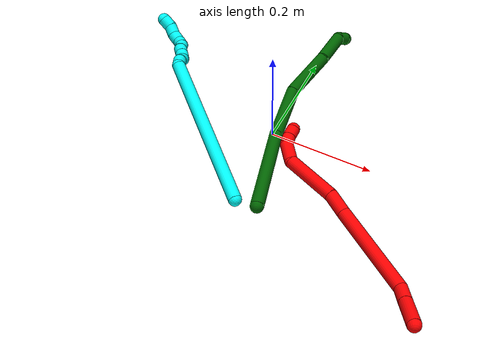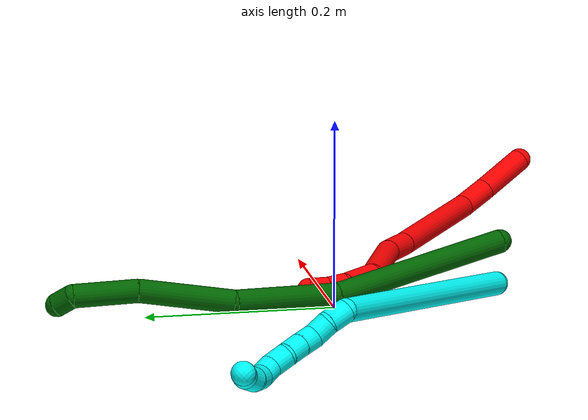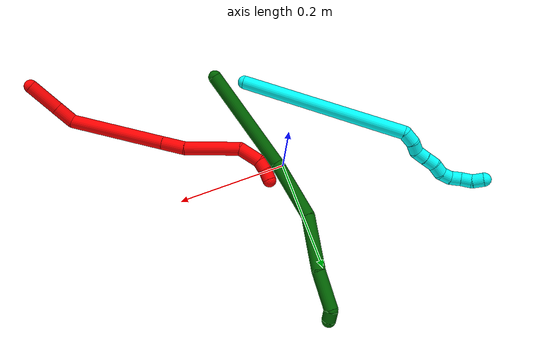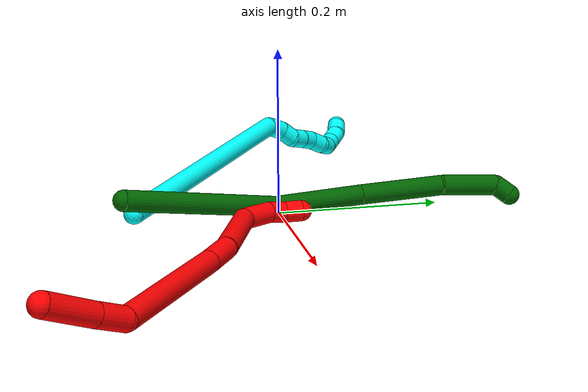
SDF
<sdf version="1.7">
 <world name="default">
  <model name="2">
   <static>0</static>
   <link name="2">
    <collision name="collision-cylinder-e_1_1_4">
     <pose>-0.006052 -0.006057 -0.028628 2.93309 -0.203959 -1.5486</pose>
     <geometry><cylinder><radius>0.0125</radius><length>0.059763</length></cylinder></geometry>
     <surface>
      <friction><ode><mu>1.16</mu><mu2>1.16</mu2><slip1>0</slip1><slip2>0</slip2></ode></friction>
      <contact><ode><kp>1e+06</kp><kd>1</kd><max_vel>0</max_vel><min_depth>0.001</min_depth></ode></contact>
     </surface>
    </collision>
    <visual name="visual-cylinder-e_1_1_4">
     <pose>-0.006052 -0.006057 -0.028628 2.93309 -0.203959 -1.5486</pose>
     <geometry><cylinder><radius>0.0125</radius><length>0.059763</length></cylinder></geometry>
     <material><ambient>1 0 0 1</ambient></material>
    </visual>
    <collision name="collision-cylinder-e_2_4_5">
     <pose>-0.015595 -0.01518 -0.074829 2.9689 -0.193214 -1.6835</pose>
     <geometry><cylinder><radius>0.0125</radius><length>0.036353</length></cylinder></geometry>
     <surface>
      <friction><ode><mu>1.16</mu><mu2>1.16</mu2><slip1>0</slip1><slip2>0</slip2></ode></friction>
      <contact><ode><kp>1e+06</kp><kd>1</kd><max_vel>0</max_vel><min_depth>0.001</min_depth></ode></contact>
     </surface>
    </collision>
    <visual name="visual-cylinder-e_2_4_5">
     <pose>-0.015595 -0.01518 -0.074829 2.9689 -0.193214 -1.6835</pose>
     <geometry><cylinder><radius>0.0125</radius><length>0.036353</length></cylinder></geometry>
     <material><ambient>1 0 0 1</ambient></material>
    </visual>
    <collision name="collision-cylinder-e_3_5_6">
     <pose>-0.057351 0.008394 -0.166332 -2.79575 -0.453158 1.84485</pose>
     <geometry><cylinder><radius>0.0125</radius><length>0.174808</length></cylinder></geometry>
     <surface>
      <friction><ode><mu>1.16</mu><mu2>1.16</mu2><slip1>0</slip1><slip2>0</slip2></ode></friction>
      <contact><ode><kp>1e+06</kp><kd>1</kd><max_vel>0</max_vel><min_depth>0.001</min_depth></ode></contact>
     </surface>
    </collision>
    <visual name="visual-cylinder-e_3_5_6">
     <pose>-0.057351 0.008394 -0.166332 -2.79575 -0.453158 1.84485</pose>
     <geometry><cylinder><radius>0.0125</radius><length>0.174808</length></cylinder></geometry>
     <material><ambient>1 0 0 1</ambient></material>
    </visual>
    <collision name="collision-cylinder-e_4_6_7">
     <pose>-0.104454 0.042635 -0.258341 -2.74353 -0.423297 1.63399</pose>
     <geometry><cylinder><radius>0.0125</radius><length>0.043024</length></cylinder></geometry>
     <surface>
      <friction><ode><mu>1.16</mu><mu2>1.16</mu2><slip1>0</slip1><slip2>0</slip2></ode></friction>
      <contact><ode><kp>1e+06</kp><kd>1</kd><max_vel>0</max_vel><min_depth>0.001</min_depth></ode></contact>
     </surface>
    </collision>
    <visual name="visual-cylinder-e_4_6_7">
     <pose>-0.104454 0.042635 -0.258341 -2.74353 -0.423297 1.63399</pose>
     <geometry><cylinder><radius>0.0125</radius><length>0.043024</length></cylinder></geometry>
     <material><ambient>1 0 0 1</ambient></material>
    </visual>
    <collision name="collision-cylinder-e_5_7_8">
     <pose>-0.144526 0.068977 -0.312462 -2.66212 -0.655521 1.89501</pose>
     <geometry><cylinder><radius>0.0125</radius><length>0.102484</length></cylinder></geometry>
     <surface>
      <friction><ode><mu>1.16</mu><mu2>1.16</mu2><slip1>0</slip1><slip2>0</slip2></ode></friction>
      <contact><ode><kp>1e+06</kp><kd>1</kd><max_vel>0</max_vel><min_depth>0.001</min_depth></ode></contact>
     </surface>
    </collision>
    <visual name="visual-cylinder-e_5_7_8">
     <pose>-0.144526 0.068977 -0.312462 -2.66212 -0.655521 1.89501</pose>
     <geometry><cylinder><radius>0.0125</radius><length>0.102484</length></cylinder></geometry>
     <material><ambient>1 0 0 1</ambient></material>
    </visual>
    <collision name="collision-cylinder-e_6_8_9">
     <pose>-0.179109 0.091489 -0.369082 -2.96024 -0.158654 1.43683</pose>
     <geometry><cylinder><radius>0.0125</radius><length>0.042378</length></cylinder></geometry>
     <surface>
      <friction><ode><mu>1.16</mu><mu2>1.16</mu2><slip1>0</slip1><slip2>0</slip2></ode></friction>
      <contact><ode><kp>1e+06</kp><kd>1</kd><max_vel>0</max_vel><min_depth>0.001</min_depth></ode></contact>
     </surface>
    </collision>
    <visual name="visual-cylinder-e_6_8_9">
     <pose>-0.179109 0.091489 -0.369082 -2.96024 -0.158654 1.43683</pose>
     <geometry><cylinder><radius>0.0125</radius><length>0.042378</length></cylinder></geometry>
     <material><ambient>1 0 0 1</ambient></material>
    </visual>
    <collision name="collision-cylinder-e_7_9_10">
     <pose>-0.180292 0.094973 -0.399547 3.11229 0.215528 2.87233</pose>
     <geometry><cylinder><radius>0.0125</radius><length>0.020247</length></cylinder></geometry>
     <surface>
      <friction><ode><mu>1.16</mu><mu2>1.16</mu2><slip1>0</slip1><slip2>0</slip2></ode></friction>
      <contact><ode><kp>1e+06</kp><kd>1</kd><max_vel>0</max_vel><min_depth>0.001</min_depth></ode></contact>
     </surface>
    </collision>
    <visual name="visual-cylinder-e_7_9_10">
     <pose>-0.180292 0.094973 -0.399547 3.11229 0.215528 2.87233</pose>
     <geometry><cylinder><radius>0.0125</radius><length>0.020247</length></cylinder></geometry>
     <material><ambient>1 0 0 1</ambient></material>
    </visual>
    <collision name="collision-cylinder-e_8_10_2">
     <pose>-0.173798 0.094655 -0.418967 3.13862 0.426191 3.12784</pose>
     <geometry><cylinder><radius>0.0125</radius><length>0.020942</length></cylinder></geometry>
     <surface>
      <friction><ode><mu>1.16</mu><mu2>1.16</mu2><slip1>0</slip1><slip2>0</slip2></ode></friction>
      <contact><ode><kp>1e+06</kp><kd>1</kd><max_vel>0</max_vel><min_depth>0.001</min_depth></ode></contact>
     </surface>
    </collision>
    <visual name="visual-cylinder-e_8_10_2">
     <pose>-0.173798 0.094655 -0.418967 3.13862 0.426191 3.12784</pose>
     <geometry><cylinder><radius>0.0125</radius><length>0.020942</length></cylinder></geometry>
     <material><ambient>1 0 0 1</ambient></material>
    </visual>
    <collision name="collision-sphere-2">
     <pose>-0.169469 0.094627 -0.428501 0 -0 0</pose>
     <geometry><sphere><radius>0.0125</radius></sphere></geometry>
     <surface>
      <friction><ode><mu>1.16</mu><mu2>1.16</mu2><slip1>0</slip1><slip2>0</slip2></ode></friction>
      <contact><ode><kp>1e+06</kp><kd>1</kd><max_vel>0</max_vel><min_depth>0.001</min_depth></ode></contact>
     </surface>
    </collision>
    <visual name="visual-sphere-2">
     <pose>-0.169469 0.094627 -0.428501 0 -0 0</pose>
     <geometry><sphere><radius>0.0125</radius></sphere></geometry>
     <material><ambient>1 0 0 1</ambient></material>
    </visual>
    <collision name="collision-sphere-10">
     <pose>-0.178127 0.094684 -0.409432 0 -0 0</pose>
     <geometry><sphere><radius>0.0125</radius></sphere></geometry>
     <surface>
      <friction><ode><mu>1.16</mu><mu2>1.16</mu2><slip1>0</slip1><slip2>0</slip2></ode></friction>
      <contact><ode><kp>1e+06</kp><kd>1</kd><max_vel>0</max_vel><min_depth>0.001</min_depth></ode></contact>
     </surface>
    </collision>
    <visual name="visual-sphere-10">
     <pose>-0.178127 0.094684 -0.409432 0 -0 0</pose>
     <geometry><sphere><radius>0.0125</radius></sphere></geometry>
     <material><ambient>1 0 0 1</ambient></material>
    </visual>
    <collision name="collision-sphere-9">
     <pose>-0.182457 0.095263 -0.389662 0 -0 0</pose>
     <geometry><sphere><radius>0.0125</radius></sphere></geometry>
     <surface>
      <friction><ode><mu>1.16</mu><mu2>1.16</mu2><slip1>0</slip1><slip2>0</slip2></ode></friction>
      <contact><ode><kp>1e+06</kp><kd>1</kd><max_vel>0</max_vel><min_depth>0.001</min_depth></ode></contact>
     </surface>
    </collision>
    <visual name="visual-sphere-9">
     <pose>-0.182457 0.095263 -0.389662 0 -0 0</pose>
     <geometry><sphere><radius>0.0125</radius></sphere></geometry>
     <material><ambient>1 0 0 1</ambient></material>
    </visual>
    <collision name="collision-sphere-4">
     <pose>-0.012105 -0.012114 -0.057256 0 -0 0</pose>
     <geometry><sphere><radius>0.0125</radius></sphere></geometry>
     <surface>
      <friction><ode><mu>1.16</mu><mu2>1.16</mu2><slip1>0</slip1><slip2>0</slip2></ode></friction>
      <contact><ode><kp>1e+06</kp><kd>1</kd><max_vel>0</max_vel><min_depth>0.001</min_depth></ode></contact>
     </surface>
    </collision>
    <visual name="visual-sphere-4">
     <pose>-0.012105 -0.012114 -0.057256 0 -0 0</pose>
     <geometry><sphere><radius>0.0125</radius></sphere></geometry>
     <material><ambient>1 0 0 1</ambient></material>
    </visual>
    <collision name="collision-sphere-1">
     <geometry><sphere><radius>0.0125</radius></sphere></geometry>
     <surface>
      <friction><ode><mu>1.16</mu><mu2>1.16</mu2><slip1>0</slip1><slip2>0</slip2></ode></friction>
      <contact><ode><kp>1e+06</kp><kd>1</kd><max_vel>0</max_vel><min_depth>0.001</min_depth></ode></contact>
     </surface>
    </collision>
    <visual name="visual-sphere-1">
     <geometry><sphere><radius>0.0125</radius></sphere></geometry>
     <material><ambient>1 0 0 1</ambient></material>
    </visual>
    <collision name="collision-sphere-8">
     <pose>-0.175762 0.087716 -0.348502 0 -0 0</pose>
     <geometry><sphere><radius>0.0125</radius></sphere></geometry>
     <surface>
      <friction><ode><mu>1.16</mu><mu2>1.16</mu2><slip1>0</slip1><slip2>0</slip2></ode></friction>
      <contact><ode><kp>1e+06</kp><kd>1</kd><max_vel>0</max_vel><min_depth>0.001</min_depth></ode></contact>
     </surface>
    </collision>
    <visual name="visual-sphere-8">
     <pose>-0.175762 0.087716 -0.348502 0 -0 0</pose>
     <geometry><sphere><radius>0.0125</radius></sphere></geometry>
     <material><ambient>1 0 0 1</ambient></material>
    </visual>
    <collision name="collision-sphere-5">
     <pose>-0.019085 -0.018245 -0.092402 0 -0 0</pose>
     <geometry><sphere><radius>0.0125</radius></sphere></geometry>
     <surface>
      <friction><ode><mu>1.16</mu><mu2>1.16</mu2><slip1>0</slip1><slip2>0</slip2></ode></friction>
      <contact><ode><kp>1e+06</kp><kd>1</kd><max_vel>0</max_vel><min_depth>0.001</min_depth></ode></contact>
     </surface>
    </collision>
    <visual name="visual-sphere-5">
     <pose>-0.019085 -0.018245 -0.092402 0 -0 0</pose>
     <geometry><sphere><radius>0.0125</radius></sphere></geometry>
     <material><ambient>1 0 0 1</ambient></material>
    </visual>
    <collision name="collision-sphere-6">
     <pose>-0.095617 0.035032 -0.240261 0 -0 0</pose>
     <geometry><sphere><radius>0.0125</radius></sphere></geometry>
     <surface>
      <friction><ode><mu>1.16</mu><mu2>1.16</mu2><slip1>0</slip1><slip2>0</slip2></ode></friction>
      <contact><ode><kp>1e+06</kp><kd>1</kd><max_vel>0</max_vel><min_depth>0.001</min_depth></ode></contact>
     </surface>
    </collision>
    <visual name="visual-sphere-6">
     <pose>-0.095617 0.035032 -0.240261 0 -0 0</pose>
     <geometry><sphere><radius>0.0125</radius></sphere></geometry>
     <material><ambient>1 0 0 1</ambient></material>
    </visual>
    <collision name="collision-sphere-7">
     <pose>-0.11329 0.050237 -0.276421 0 -0 0</pose>
     <geometry><sphere><radius>0.0125</radius></sphere></geometry>
     <surface>
      <friction><ode><mu>1.16</mu><mu2>1.16</mu2><slip1>0</slip1><slip2>0</slip2></ode></friction>
      <contact><ode><kp>1e+06</kp><kd>1</kd><max_vel>0</max_vel><min_depth>0.001</min_depth></ode></contact>
     </surface>
    </collision>
    <visual name="visual-sphere-7">
     <pose>-0.11329 0.050237 -0.276421 0 -0 0</pose>
     <geometry><sphere><radius>0.0125</radius></sphere></geometry>
     <material><ambient>1 0 0 1</ambient></material>
    </visual>
    <inertial>
     <pose>-0.090281 0.034478 -0.218299 0 -0 0</pose>
     <mass>0.5</mass>
     <inertia>
      <ixx>0.000303</ixx>
      <ixy>0</ixy>
      <ixz>0</ixz>
      <iyy>0.000696</iyy>
      <iyz>0</iyz>
      <izz>5.9e-05</izz>
     </inertia>
    </inertial>
   </link>
   <pose>0.388147 -0.28752 0.051485 1.4013 -0.360056 0.491936</pose>
  </model>
  <model name="3">
   <static>0</static>
   <link name="3">
    <collision name="collision-cylinder-e_1_1_4">
     <pose>0.049361 0.144516 0.034163 -1.33866 0.320911 -0.25471</pose>
     <geometry><cylinder><radius>0.0125</radius><length>0.312975</length></cylinder></geometry>
     <surface>
      <friction><ode><mu>1.16</mu><mu2>1.16</mu2><slip1>0</slip1><slip2>0</slip2></ode></friction>
      <contact><ode><kp>1e+06</kp><kd>1</kd><max_vel>0</max_vel><min_depth>0.001</min_depth></ode></contact>
     </surface>
    </collision>
    <visual name="visual-cylinder-e_1_1_4">
     <pose>0.049361 0.144516 0.034163 -1.33866 0.320911 -0.25471</pose>
     <geometry><cylinder><radius>0.0125</radius><length>0.312975</length></cylinder></geometry>
     <material><ambient>0.003922 1 0.996078 1</ambient></material>
    </visual>
    <collision name="collision-cylinder-e_2_4_5">
     <pose>0.108616 0.295566 0.069815 -1.34676 0.975387 -0.800622</pose>
     <geometry><cylinder><radius>0.0125</radius><length>0.023901</length></cylinder></geometry>
     <surface>
      <friction><ode><mu>1.16</mu><mu2>1.16</mu2><slip1>0</slip1><slip2>0</slip2></ode></friction>
      <contact><ode><kp>1e+06</kp><kd>1</kd><max_vel>0</max_vel><min_depth>0.001</min_depth></ode></contact>
     </surface>
    </collision>
    <visual name="visual-cylinder-e_2_4_5">
     <pose>0.108616 0.295566 0.069815 -1.34676 0.975387 -0.800622</pose>
     <geometry><cylinder><radius>0.0125</radius><length>0.023901</length></cylinder></geometry>
     <material><ambient>0.003922 1 0.996078 1</ambient></material>
    </visual>
    <collision name="collision-cylinder-e_3_5_6">
     <pose>0.128195 0.304682 0.071521 -1.48694 1.30948 -1.22933</pose>
     <geometry><cylinder><radius>0.0125</radius><length>0.02005</length></cylinder></geometry>
     <surface>
      <friction><ode><mu>1.16</mu><mu2>1.16</mu2><slip1>0</slip1><slip2>0</slip2></ode></friction>
      <contact><ode><kp>1e+06</kp><kd>1</kd><max_vel>0</max_vel><min_depth>0.001</min_depth></ode></contact>
     </surface>
    </collision>
    <visual name="visual-cylinder-e_3_5_6">
     <pose>0.128195 0.304682 0.071521 -1.48694 1.30948 -1.22933</pose>
     <geometry><cylinder><radius>0.0125</radius><length>0.02005</length></cylinder></geometry>
     <material><ambient>0.003922 1 0.996078 1</ambient></material>
    </visual>
    <collision name="collision-cylinder-e_4_6_7">
     <pose>0.145014 0.314894 0.0728 -1.43239 0.746996 -0.657425</pose>
     <geometry><cylinder><radius>0.0125</radius><length>0.021001</length></cylinder></geometry>
     <surface>
      <friction><ode><mu>1.16</mu><mu2>1.16</mu2><slip1>0</slip1><slip2>0</slip2></ode></friction>
      <contact><ode><kp>1e+06</kp><kd>1</kd><max_vel>0</max_vel><min_depth>0.001</min_depth></ode></contact>
     </surface>
    </collision>
    <visual name="visual-cylinder-e_4_6_7">
     <pose>0.145014 0.314894 0.0728 -1.43239 0.746996 -0.657425</pose>
     <geometry><cylinder><radius>0.0125</radius><length>0.021001</length></cylinder></geometry>
     <material><ambient>0.003922 1 0.996078 1</ambient></material>
    </visual>
    <collision name="collision-cylinder-e_5_7_8">
     <pose>0.159158 0.330156 0.07455 -1.4811 0.740952 -0.682327</pose>
     <geometry><cylinder><radius>0.0125</radius><length>0.020769</length></cylinder></geometry>
     <surface>
      <friction><ode><mu>1.16</mu><mu2>1.16</mu2><slip1>0</slip1><slip2>0</slip2></ode></friction>
      <contact><ode><kp>1e+06</kp><kd>1</kd><max_vel>0</max_vel><min_depth>0.001</min_depth></ode></contact>
     </surface>
    </collision>
    <visual name="visual-cylinder-e_5_7_8">
     <pose>0.159158 0.330156 0.07455 -1.4811 0.740952 -0.682327</pose>
     <geometry><cylinder><radius>0.0125</radius><length>0.020769</length></cylinder></geometry>
     <material><ambient>0.003922 1 0.996078 1</ambient></material>
    </visual>
    <collision name="collision-cylinder-e_6_8_9">
     <pose>0.175221 0.342971 0.076344 -1.36024 1.04113 -0.868422</pose>
     <geometry><cylinder><radius>0.0125</radius><length>0.020984</length></cylinder></geometry>
     <surface>
      <friction><ode><mu>1.16</mu><mu2>1.16</mu2><slip1>0</slip1><slip2>0</slip2></ode></friction>
      <contact><ode><kp>1e+06</kp><kd>1</kd><max_vel>0</max_vel><min_depth>0.001</min_depth></ode></contact>
     </surface>
    </collision>
    <visual name="visual-cylinder-e_6_8_9">
     <pose>0.175221 0.342971 0.076344 -1.36024 1.04113 -0.868422</pose>
     <geometry><cylinder><radius>0.0125</radius><length>0.020984</length></cylinder></geometry>
     <material><ambient>0.003922 1 0.996078 1</ambient></material>
    </visual>
    <collision name="collision-cylinder-e_7_9_10">
     <pose>0.190422 0.356057 0.076628 -1.6747 0.658404 -0.724738</pose>
     <geometry><cylinder><radius>0.0125</radius><length>0.020089</length></cylinder></geometry>
     <surface>
      <friction><ode><mu>1.16</mu><mu2>1.16</mu2><slip1>0</slip1><slip2>0</slip2></ode></friction>
      <contact><ode><kp>1e+06</kp><kd>1</kd><max_vel>0</max_vel><min_depth>0.001</min_depth></ode></contact>
     </surface>
    </collision>
    <visual name="visual-cylinder-e_7_9_10">
     <pose>0.190422 0.356057 0.076628 -1.6747 0.658404 -0.724738</pose>
     <geometry><cylinder><radius>0.0125</radius><length>0.020089</length></cylinder></geometry>
     <material><ambient>0.003922 1 0.996078 1</ambient></material>
    </visual>
    <collision name="collision-cylinder-e_8_10_11">
     <pose>0.198427 0.37384 0.076309 -1.51971 0.18575 -0.176544</pose>
     <geometry><cylinder><radius>0.0125</radius><length>0.020134</length></cylinder></geometry>
     <surface>
      <friction><ode><mu>1.16</mu><mu2>1.16</mu2><slip1>0</slip1><slip2>0</slip2></ode></friction>
      <contact><ode><kp>1e+06</kp><kd>1</kd><max_vel>0</max_vel><min_depth>0.001</min_depth></ode></contact>
     </surface>
    </collision>
    <visual name="visual-cylinder-e_8_10_11">
     <pose>0.198427 0.37384 0.076309 -1.51971 0.18575 -0.176544</pose>
     <geometry><cylinder><radius>0.0125</radius><length>0.020134</length></cylinder></geometry>
     <material><ambient>0.003922 1 0.996078 1</ambient></material>
    </visual>
    <collision name="collision-cylinder-e_9_11_12">
     <pose>0.201231 0.39312 0.080189 -1.22605 0.094396 -0.066426</pose>
     <geometry><cylinder><radius>0.0125</radius><length>0.020063</length></cylinder></geometry>
     <surface>
      <friction><ode><mu>1.16</mu><mu2>1.16</mu2><slip1>0</slip1><slip2>0</slip2></ode></friction>
      <contact><ode><kp>1e+06</kp><kd>1</kd><max_vel>0</max_vel><min_depth>0.001</min_depth></ode></contact>
     </surface>
    </collision>
    <visual name="visual-cylinder-e_9_11_12">
     <pose>0.201231 0.39312 0.080189 -1.22605 0.094396 -0.066426</pose>
     <geometry><cylinder><radius>0.0125</radius><length>0.020063</length></cylinder></geometry>
     <material><ambient>0.003922 1 0.996078 1</ambient></material>
    </visual>
    <collision name="collision-cylinder-e_10_12_2">
     <pose>0.200341 0.412327 0.084441 -1.48164 -0.184341 0.168676</pose>
     <geometry><cylinder><radius>0.0125</radius><length>0.020034</length></cylinder></geometry>
     <surface>
      <friction><ode><mu>1.16</mu><mu2>1.16</mu2><slip1>0</slip1><slip2>0</slip2></ode></friction>
      <contact><ode><kp>1e+06</kp><kd>1</kd><max_vel>0</max_vel><min_depth>0.001</min_depth></ode></contact>
     </surface>
    </collision>
    <visual name="visual-cylinder-e_10_12_2">
     <pose>0.200341 0.412327 0.084441 -1.48164 -0.184341 0.168676</pose>
     <geometry><cylinder><radius>0.0125</radius><length>0.020034</length></cylinder></geometry>
     <material><ambient>0.003922 1 0.996078 1</ambient></material>
    </visual>
    <collision name="collision-sphere-2">
     <pose>0.198505 0.422136 0.085318 0 -0 0</pose>
     <geometry><sphere><radius>0.0125</radius></sphere></geometry>
     <surface>
      <friction><ode><mu>1.16</mu><mu2>1.16</mu2><slip1>0</slip1><slip2>0</slip2></ode></friction>
      <contact><ode><kp>1e+06</kp><kd>1</kd><max_vel>0</max_vel><min_depth>0.001</min_depth></ode></contact>
     </surface>
    </collision>
    <visual name="visual-sphere-2">
     <pose>0.198505 0.422136 0.085318 0 -0 0</pose>
     <geometry><sphere><radius>0.0125</radius></sphere></geometry>
     <material><ambient>0.003922 1 0.996078 1</ambient></material>
    </visual>
    <collision name="collision-sphere-12">
     <pose>0.202177 0.402519 0.083565 0 -0 0</pose>
     <geometry><sphere><radius>0.0125</radius></sphere></geometry>
     <surface>
      <friction><ode><mu>1.16</mu><mu2>1.16</mu2><slip1>0</slip1><slip2>0</slip2></ode></friction>
      <contact><ode><kp>1e+06</kp><kd>1</kd><max_vel>0</max_vel><min_depth>0.001</min_depth></ode></contact>
     </surface>
    </collision>
    <visual name="visual-sphere-12">
     <pose>0.202177 0.402519 0.083565 0 -0 0</pose>
     <geometry><sphere><radius>0.0125</radius></sphere></geometry>
     <material><ambient>0.003922 1 0.996078 1</ambient></material>
    </visual>
    <collision name="collision-sphere-11">
     <pose>0.200286 0.383721 0.076814 0 -0 0</pose>
     <geometry><sphere><radius>0.0125</radius></sphere></geometry>
     <surface>
      <friction><ode><mu>1.16</mu><mu2>1.16</mu2><slip1>0</slip1><slip2>0</slip2></ode></friction>
      <contact><ode><kp>1e+06</kp><kd>1</kd><max_vel>0</max_vel><min_depth>0.001</min_depth></ode></contact>
     </surface>
    </collision>
    <visual name="visual-sphere-11">
     <pose>0.200286 0.383721 0.076814 0 -0 0</pose>
     <geometry><sphere><radius>0.0125</radius></sphere></geometry>
     <material><ambient>0.003922 1 0.996078 1</ambient></material>
    </visual>
    <collision name="collision-sphere-10">
     <pose>0.196567 0.363959 0.075804 0 -0 0</pose>
     <geometry><sphere><radius>0.0125</radius></sphere></geometry>
     <surface>
      <friction><ode><mu>1.16</mu><mu2>1.16</mu2><slip1>0</slip1><slip2>0</slip2></ode></friction>
      <contact><ode><kp>1e+06</kp><kd>1</kd><max_vel>0</max_vel><min_depth>0.001</min_depth></ode></contact>
     </surface>
    </collision>
    <visual name="visual-sphere-10">
     <pose>0.196567 0.363959 0.075804 0 -0 0</pose>
     <geometry><sphere><radius>0.0125</radius></sphere></geometry>
     <material><ambient>0.003922 1 0.996078 1</ambient></material>
    </visual>
    <collision name="collision-sphere-9">
     <pose>0.184276 0.348155 0.077452 0 -0 0</pose>
     <geometry><sphere><radius>0.0125</radius></sphere></geometry>
     <surface>
      <friction><ode><mu>1.16</mu><mu2>1.16</mu2><slip1>0</slip1><slip2>0</slip2></ode></friction>
      <contact><ode><kp>1e+06</kp><kd>1</kd><max_vel>0</max_vel><min_depth>0.001</min_depth></ode></contact>
     </surface>
    </collision>
    <visual name="visual-sphere-9">
     <pose>0.184276 0.348155 0.077452 0 -0 0</pose>
     <geometry><sphere><radius>0.0125</radius></sphere></geometry>
     <material><ambient>0.003922 1 0.996078 1</ambient></material>
    </visual>
    <collision name="collision-sphere-4">
     <pose>0.098722 0.289031 0.068325 0 -0 0</pose>
     <geometry><sphere><radius>0.0125</radius></sphere></geometry>
     <surface>
      <friction><ode><mu>1.16</mu><mu2>1.16</mu2><slip1>0</slip1><slip2>0</slip2></ode></friction>
      <contact><ode><kp>1e+06</kp><kd>1</kd><max_vel>0</max_vel><min_depth>0.001</min_depth></ode></contact>
     </surface>
    </collision>
    <visual name="visual-sphere-4">
     <pose>0.098722 0.289031 0.068325 0 -0 0</pose>
     <geometry><sphere><radius>0.0125</radius></sphere></geometry>
     <material><ambient>0.003922 1 0.996078 1</ambient></material>
    </visual>
    <collision name="collision-sphere-1">
     <geometry><sphere><radius>0.0125</radius></sphere></geometry>
     <surface>
      <friction><ode><mu>1.16</mu><mu2>1.16</mu2><slip1>0</slip1><slip2>0</slip2></ode></friction>
      <contact><ode><kp>1e+06</kp><kd>1</kd><max_vel>0</max_vel><min_depth>0.001</min_depth></ode></contact>
     </surface>
    </collision>
    <visual name="visual-sphere-1">
     <geometry><sphere><radius>0.0125</radius></sphere></geometry>
     <material><ambient>0.003922 1 0.996078 1</ambient></material>
    </visual>
    <collision name="collision-sphere-8">
     <pose>0.166167 0.337787 0.075236 0 -0 0</pose>
     <geometry><sphere><radius>0.0125</radius></sphere></geometry>
     <surface>
      <friction><ode><mu>1.16</mu><mu2>1.16</mu2><slip1>0</slip1><slip2>0</slip2></ode></friction>
      <contact><ode><kp>1e+06</kp><kd>1</kd><max_vel>0</max_vel><min_depth>0.001</min_depth></ode></contact>
     </surface>
    </collision>
    <visual name="visual-sphere-8">
     <pose>0.166167 0.337787 0.075236 0 -0 0</pose>
     <geometry><sphere><radius>0.0125</radius></sphere></geometry>
     <material><ambient>0.003922 1 0.996078 1</ambient></material>
    </visual>
    <collision name="collision-sphere-5">
     <pose>0.11851 0.302101 0.071304 0 -0 0</pose>
     <geometry><sphere><radius>0.0125</radius></sphere></geometry>
     <surface>
      <friction><ode><mu>1.16</mu><mu2>1.16</mu2><slip1>0</slip1><slip2>0</slip2></ode></friction>
      <contact><ode><kp>1e+06</kp><kd>1</kd><max_vel>0</max_vel><min_depth>0.001</min_depth></ode></contact>
     </surface>
    </collision>
    <visual name="visual-sphere-5">
     <pose>0.11851 0.302101 0.071304 0 -0 0</pose>
     <geometry><sphere><radius>0.0125</radius></sphere></geometry>
     <material><ambient>0.003922 1 0.996078 1</ambient></material>
    </visual>
    <collision name="collision-sphere-6">
     <pose>0.137879 0.307263 0.071737 0 -0 0</pose>
     <geometry><sphere><radius>0.0125</radius></sphere></geometry>
     <surface>
      <friction><ode><mu>1.16</mu><mu2>1.16</mu2><slip1>0</slip1><slip2>0</slip2></ode></friction>
      <contact><ode><kp>1e+06</kp><kd>1</kd><max_vel>0</max_vel><min_depth>0.001</min_depth></ode></contact>
     </surface>
    </collision>
    <visual name="visual-sphere-6">
     <pose>0.137879 0.307263 0.071737 0 -0 0</pose>
     <geometry><sphere><radius>0.0125</radius></sphere></geometry>
     <material><ambient>0.003922 1 0.996078 1</ambient></material>
    </visual>
    <collision name="collision-sphere-7">
     <pose>0.152148 0.322525 0.073863 0 -0 0</pose>
     <geometry><sphere><radius>0.0125</radius></sphere></geometry>
     <surface>
      <friction><ode><mu>1.16</mu><mu2>1.16</mu2><slip1>0</slip1><slip2>0</slip2></ode></friction>
      <contact><ode><kp>1e+06</kp><kd>1</kd><max_vel>0</max_vel><min_depth>0.001</min_depth></ode></contact>
     </surface>
    </collision>
    <visual name="visual-sphere-7">
     <pose>0.152148 0.322525 0.073863 0 -0 0</pose>
     <geometry><sphere><radius>0.0125</radius></sphere></geometry>
     <material><ambient>0.003922 1 0.996078 1</ambient></material>
    </visual>
    <inertial>
     <pose>0.093029 0.219795 0.0497 0 -0 0</pose>
     <mass>0.5</mass>
     <inertia>
      <ixx>0.001763</ixx>
      <ixy>0</ixy>
      <ixz>0</ixz>
      <iyy>0.000192</iyy>
      <iyz>0</iyz>
      <izz>-0.003191</izz>
     </inertia>
    </inertial>
   </link>
   <pose>0.012726 -0.175578 0.014402 0.349794 0.793555 1.48082</pose>
  </model>
  <model name="6">
   <static>0</static>
   <link name="6">
    <collision name="collision-cylinder-e_1_1_4">
     <pose>-0.005967 0.046511 -0.086233 -2.64695 -0.060825 0.239818</pose>
     <geometry><cylinder><radius>0.0125</radius><length>0.196316</length></cylinder></geometry>
     <surface>
      <friction><ode><mu>1.16</mu><mu2>1.16</mu2><slip1>0</slip1><slip2>0</slip2></ode></friction>
      <contact><ode><kp>1e+06</kp><kd>1</kd><max_vel>0</max_vel><min_depth>0.001</min_depth></ode></contact>
     </surface>
    </collision>
    <visual name="visual-cylinder-e_1_1_4">
     <pose>-0.005967 0.046511 -0.086233 -2.64695 -0.060825 0.239818</pose>
     <geometry><cylinder><radius>0.0125</radius><length>0.196316</length></cylinder></geometry>
     <material><ambient>0 0.392157 0.003922 1</ambient></material>
    </visual>
    <collision name="collision-cylinder-e_2_4_5">
     <pose>-0.009425 0.12965 -0.21543 -2.43564 0.044402 -0.120399</pose>
     <geometry><cylinder><radius>0.0125</radius><length>0.113026</length></cylinder></geometry>
     <surface>
      <friction><ode><mu>1.16</mu><mu2>1.16</mu2><slip1>0</slip1><slip2>0</slip2></ode></friction>
      <contact><ode><kp>1e+06</kp><kd>1</kd><max_vel>0</max_vel><min_depth>0.001</min_depth></ode></contact>
     </surface>
    </collision>
    <visual name="visual-cylinder-e_2_4_5">
     <pose>-0.009425 0.12965 -0.21543 -2.43564 0.044402 -0.120399</pose>
     <geometry><cylinder><radius>0.0125</radius><length>0.113026</length></cylinder></geometry>
     <material><ambient>0 0.392157 0.003922 1</ambient></material>
    </visual>
    <collision name="collision-cylinder-e_3_5_6">
     <pose>0.01225 0.200945 -0.289649 -2.30447 0.389621 -0.834953</pose>
     <geometry><cylinder><radius>0.0125</radius><length>0.100918</length></cylinder></geometry>
     <surface>
      <friction><ode><mu>1.16</mu><mu2>1.16</mu2><slip1>0</slip1><slip2>0</slip2></ode></friction>
      <contact><ode><kp>1e+06</kp><kd>1</kd><max_vel>0</max_vel><min_depth>0.001</min_depth></ode></contact>
     </surface>
    </collision>
    <visual name="visual-cylinder-e_3_5_6">
     <pose>0.01225 0.200945 -0.289649 -2.30447 0.389621 -0.834953</pose>
     <geometry><cylinder><radius>0.0125</radius><length>0.100918</length></cylinder></geometry>
     <material><ambient>0 0.392157 0.003922 1</ambient></material>
    </visual>
    <collision name="collision-cylinder-e_4_6_7">
     <pose>0.040301 0.255776 -0.347358 -2.49036 0.261034 -0.741584</pose>
     <geometry><cylinder><radius>0.0125</radius><length>0.068856</length></cylinder></geometry>
     <surface>
      <friction><ode><mu>1.16</mu><mu2>1.16</mu2><slip1>0</slip1><slip2>0</slip2></ode></friction>
      <contact><ode><kp>1e+06</kp><kd>1</kd><max_vel>0</max_vel><min_depth>0.001</min_depth></ode></contact>
     </surface>
    </collision>
    <visual name="visual-cylinder-e_4_6_7">
     <pose>0.040301 0.255776 -0.347358 -2.49036 0.261034 -0.741584</pose>
     <geometry><cylinder><radius>0.0125</radius><length>0.068856</length></cylinder></geometry>
     <material><ambient>0 0.392157 0.003922 1</ambient></material>
    </visual>
    <collision name="collision-cylinder-e_5_7_2">
     <pose>0.055651 0.276111 -0.382011 -3.12051 0.667572 -3.08082</pose>
     <geometry><cylinder><radius>0.0125</radius><length>0.020883</length></cylinder></geometry>
     <surface>
      <friction><ode><mu>1.16</mu><mu2>1.16</mu2><slip1>0</slip1><slip2>0</slip2></ode></friction>
      <contact><ode><kp>1e+06</kp><kd>1</kd><max_vel>0</max_vel><min_depth>0.001</min_depth></ode></contact>
     </surface>
    </collision>
    <visual name="visual-cylinder-e_5_7_2">
     <pose>0.055651 0.276111 -0.382011 -3.12051 0.667572 -3.08082</pose>
     <geometry><cylinder><radius>0.0125</radius><length>0.020883</length></cylinder></geometry>
     <material><ambient>0 0.392157 0.003922 1</ambient></material>
    </visual>
    <collision name="collision-sphere-2">
     <pose>0.062115 0.276284 -0.390209 0 -0 0</pose>
     <geometry><sphere><radius>0.0125</radius></sphere></geometry>
     <surface>
      <friction><ode><mu>1.16</mu><mu2>1.16</mu2><slip1>0</slip1><slip2>0</slip2></ode></friction>
      <contact><ode><kp>1e+06</kp><kd>1</kd><max_vel>0</max_vel><min_depth>0.001</min_depth></ode></contact>
     </surface>
    </collision>
    <visual name="visual-sphere-2">
     <pose>0.062115 0.276284 -0.390209 0 -0 0</pose>
     <geometry><sphere><radius>0.0125</radius></sphere></geometry>
     <material><ambient>0 0.392157 0.003922 1</ambient></material>
    </visual>
    <collision name="collision-sphere-7">
     <pose>0.049186 0.275938 -0.373812 0 -0 0</pose>
     <geometry><sphere><radius>0.0125</radius></sphere></geometry>
     <surface>
      <friction><ode><mu>1.16</mu><mu2>1.16</mu2><slip1>0</slip1><slip2>0</slip2></ode></friction>
      <contact><ode><kp>1e+06</kp><kd>1</kd><max_vel>0</max_vel><min_depth>0.001</min_depth></ode></contact>
     </surface>
    </collision>
    <visual name="visual-sphere-7">
     <pose>0.049186 0.275938 -0.373812 0 -0 0</pose>
     <geometry><sphere><radius>0.0125</radius></sphere></geometry>
     <material><ambient>0 0.392157 0.003922 1</ambient></material>
    </visual>
    <collision name="collision-sphere-6">
     <pose>0.031416 0.235614 -0.320904 0 -0 0</pose>
     <geometry><sphere><radius>0.0125</radius></sphere></geometry>
     <surface>
      <friction><ode><mu>1.16</mu><mu2>1.16</mu2><slip1>0</slip1><slip2>0</slip2></ode></friction>
      <contact><ode><kp>1e+06</kp><kd>1</kd><max_vel>0</max_vel><min_depth>0.001</min_depth></ode></contact>
     </surface>
    </collision>
    <visual name="visual-sphere-6">
     <pose>0.031416 0.235614 -0.320904 0 -0 0</pose>
     <geometry><sphere><radius>0.0125</radius></sphere></geometry>
     <material><ambient>0 0.392157 0.003922 1</ambient></material>
    </visual>
    <collision name="collision-sphere-5">
     <pose>-0.006917 0.166277 -0.258393 0 -0 0</pose>
     <geometry><sphere><radius>0.0125</radius></sphere></geometry>
     <surface>
      <friction><ode><mu>1.16</mu><mu2>1.16</mu2><slip1>0</slip1><slip2>0</slip2></ode></friction>
      <contact><ode><kp>1e+06</kp><kd>1</kd><max_vel>0</max_vel><min_depth>0.001</min_depth></ode></contact>
     </surface>
    </collision>
    <visual name="visual-sphere-5">
     <pose>-0.006917 0.166277 -0.258393 0 -0 0</pose>
     <geometry><sphere><radius>0.0125</radius></sphere></geometry>
     <material><ambient>0 0.392157 0.003922 1</ambient></material>
    </visual>
    <collision name="collision-sphere-1">
     <geometry><sphere><radius>0.0125</radius></sphere></geometry>
     <surface>
      <friction><ode><mu>1.16</mu><mu2>1.16</mu2><slip1>0</slip1><slip2>0</slip2></ode></friction>
      <contact><ode><kp>1e+06</kp><kd>1</kd><max_vel>0</max_vel><min_depth>0.001</min_depth></ode></contact>
     </surface>
    </collision>
    <visual name="visual-sphere-1">
     <geometry><sphere><radius>0.0125</radius></sphere></geometry>
     <material><ambient>0 0.392157 0.003922 1</ambient></material>
    </visual>
    <collision name="collision-sphere-4">
     <pose>-0.011934 0.093022 -0.172466 0 -0 0</pose>
     <geometry><sphere><radius>0.0125</radius></sphere></geometry>
     <surface>
      <friction><ode><mu>1.16</mu><mu2>1.16</mu2><slip1>0</slip1><slip2>0</slip2></ode></friction>
      <contact><ode><kp>1e+06</kp><kd>1</kd><max_vel>0</max_vel><min_depth>0.001</min_depth></ode></contact>
     </surface>
    </collision>
    <visual name="visual-sphere-4">
     <pose>-0.011934 0.093022 -0.172466 0 -0 0</pose>
     <geometry><sphere><radius>0.0125</radius></sphere></geometry>
     <material><ambient>0 0.392157 0.003922 1</ambient></material>
    </visual>
    <inertial>
     <pose>0.005873 0.134883 -0.204808 0 -0 0</pose>
     <mass>0.5</mass>
     <inertia>
      <ixx>0.000878</ixx>
      <ixy>0</ixy>
      <ixz>0</ixz>
      <iyy>-0.000592</iyy>
      <iyz>0</iyz>
      <izz>-0.000502</izz>
     </inertia>
    </inertial>
   </link>
   <pose>0.064617 -0.191076 0.045942 0.893483 0.085519 0.205275</pose>
  </model>
 </world>
</sdf>
